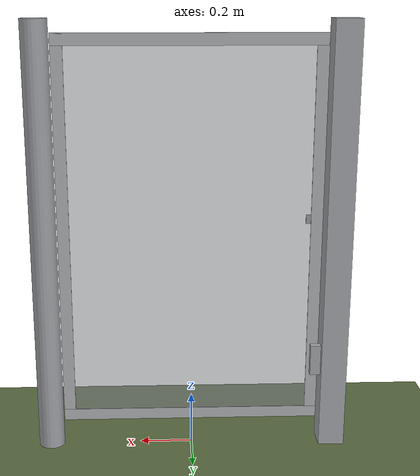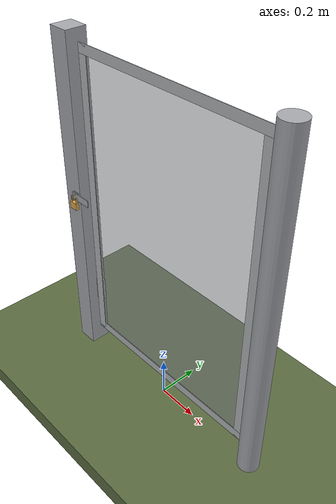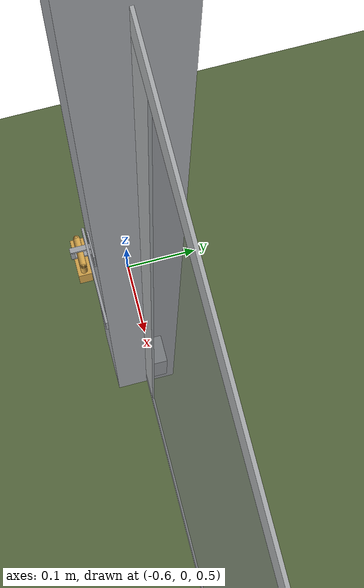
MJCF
<?xml version="1.0" ?>
<mujoco model="db0368_gate_swing_minimal">
  <compiler angle="radian" meshdir="../../hardware" texturedir="../../textures" autolimits="true" inertiafromgeom="false"/>
  <option timestep="0.002" integrator="implicitfast" cone="elliptic" impratio="10" noslip_iterations="3">
    <flag multiccd="enable"/>
  </option>
  <size memory="16M"/>
  <default>
    <geom condim="4" solref="0.005 1" solimp="0.95 0.99 0.001"/>
    <joint solreflimit="0.005 1" solimplimit="0.95 0.99 0.001"/>
    <tendon solreflimit="0.005 1"/>
    <equality solref="0.002 1"/>
  </default>
  <visual>
    <headlight ambient="0.4 0.4 0.4" diffuse="0.7 0.7 0.7" specular="0.2 0.2 0.2"/>
    <quality shadowsize="4096"/>
    <map znear="0.01" zfar="60"/>
  </visual>
  <asset>
    <material name="mat_floor" rgba="0.35 0.42 0.25 1" specular="0.2" shininess="0.15" reflectance="0"/>
    <material name="mat_wall" rgba="0.78 0.76 0.7 1" specular="0.2" shininess="0.1" reflectance="0"/>
    <material name="mat_leaf" rgba="0.7 0.71 0.72 1" specular="0.74" shininess="0.5" reflectance="0.36"/>
    <material name="mat_mesh_infill" rgba="0.6 0.62 0.64 0.55" specular="0.68" shininess="0.3" reflectance="0.1"/>
    <material name="mat_hinge" rgba="0.65 0.66 0.68 1" specular="0.74" shininess="0.5" reflectance="0.36"/>
    <material name="mat_op_steel_galvanized" rgba="0.65 0.66 0.68 1" specular="0.74" shininess="0.5" reflectance="0.36"/>
    <material name="mat_padlock" rgba="0.85 0.66 0.3 1" specular="0.8" shininess="0.75" reflectance="0.4"/>
    <material name="mat_frame" rgba="0.65 0.66 0.68 1" specular="0.74" shininess="0.5" reflectance="0.36"/>
    <material name="mat_fence_mesh" rgba="0.6 0.62 0.64 0.5" specular="0.68" shininess="0.3" reflectance="0.1"/>
    <texture name="skybox" type="skybox" builtin="gradient" rgb1="0.6 0.7 0.85" rgb2="0.9 0.92 0.95" width="256" height="256"/>
  </asset>
  <worldbody>
    <light name="sun" pos="1.5 -2.5 4" dir="-0.3 0.5 -0.8" directional="true" diffuse="0.8 0.8 0.8" specular="0.3 0.3 0.3" castshadow="true"/>
    <light name="fill" pos="-1.5 2.5 3" dir="0.3 -0.5 -0.7" directional="true" diffuse="0.35 0.35 0.4" castshadow="false"/>
    <camera name="robot_view" pos="0 -2.05 1.334" xyaxes="1 0 0 0 0.26963 0.962964" fovy="52"/>
    <camera name="far_view" pos="0 2.05 1.334" xyaxes="-1 0 0 0 -0.26963 0.962964" fovy="52"/>
    <camera name="iso" pos="-1.558 -1.722 1.662" xyaxes="0.741536 -0.670913 0 0.242917 0.268487 0.932151" fovy="46"/>
    <camera name="detail_handle" pos="-0.356 -0.864 1.18" xyaxes="0.97561 0.219512 0 -0.070934 0.315262 0.94635" fovy="38"/>
    <geom name="floor" type="box" size="6 6 0.05" pos="0 0 -0.05" material="mat_floor" group="0" contype="1" conaffinity="1" friction="0.8 0.005 0.0001" density="2400"/>
    <geom name="leaf_staple_leg_n" type="box" size="0.003 0.0025 0.013" pos="-0.534 -0.063 0.9125" quat="0 0 -0.707107 0.707107" material="mat_op_steel_galvanized" group="0" contype="1" conaffinity="1" friction="0.6 0.005 0.0001" density="7800"/>
    <geom name="leaf_staple_leg_p" type="box" size="0.003 0.0025 0.013" pos="-0.534 -0.063 0.8875" quat="0 0 -0.707107 0.707107" material="mat_op_steel_galvanized" group="0" contype="1" conaffinity="1" friction="0.6 0.005 0.0001" density="7800"/>
    <geom name="leaf_staple_bridge" type="box" size="0.003 0.015 0.0025" pos="-0.534 -0.0735 0.9" quat="0 0 -0.707107 0.707107" material="mat_op_steel_galvanized" group="0" contype="1" conaffinity="1" friction="0.6 0.005 0.0001" density="7800"/>
    <geom name="leaf_staple_base" type="box" size="0.016 0.021 0.001" pos="-0.534 -0.051 0.9" quat="0 0 -0.707107 0.707107" material="mat_op_steel_galvanized" group="1" contype="0" conaffinity="0" density="7800"/>
    <geom name="leaf_padlock_shackle" type="capsule" size="0.004 0.016" pos="-0.534 -0.065 0.9" quat="0.707107 0 -0.707107 0" material="mat_padlock" group="1" contype="0" conaffinity="0" density="7850"/>
    <geom name="leaf_padlock_leg_a" type="capsule" size="0.004 0.012" pos="-0.518 -0.065 0.888" quat="0 1 0 0" material="mat_padlock" group="1" contype="0" conaffinity="0" density="7850"/>
    <geom name="leaf_padlock_leg_b" type="capsule" size="0.004 0.012" pos="-0.55 -0.065 0.888" quat="0 1 0 0" material="mat_padlock" group="1" contype="0" conaffinity="0" density="7850"/>
    <geom name="leaf_padlock_body" type="box" size="0.022 0.018 0.008" pos="-0.534 -0.065 0.858" quat="0 0 -0.707107 0.707107" material="mat_padlock" group="0" contype="1" conaffinity="1" friction="0.6 0.005 0.0001" density="7850"/>
    <geom name="post_hinge" type="cylinder" size="0.05 0.825" pos="0.556 0 0.825" material="mat_frame" group="0" contype="1" conaffinity="1" friction="0.6 0.005 0.0001" density="800"/>
    <geom name="post_latch" type="box" size="0.05 0.05 0.825" pos="-0.556 0 0.825" material="mat_frame" group="0" contype="1" conaffinity="1" friction="0.6 0.005 0.0001" density="800"/>
    <geom name="gate_stop" type="box" size="0.02 0.012 0.06" pos="-0.486 0.0135 0.35" material="mat_frame" group="0" contype="1" conaffinity="1" friction="0.6 0.005 0.0001" density="800"/>
    <site name="approach_point" pos="0 -1.5 0" quat="1 0 0 0" size="0.05" rgba="0.2 0.9 0.2 0.5" group="4"/>
    <site name="goal_point" pos="0 1.5 0" quat="1 0 0 0" size="0.05" rgba="0.2 0.9 0.2 0.5" group="4"/>
    <site name="door_plane_center" pos="0 0 0.76" quat="1 0 0 0" size="0.02" rgba="0.2 0.9 0.2 0.5" group="4"/>
    <body name="leaf" pos="0.506 0 0">
      <inertial pos="-0.503 0 0.85" mass="5.26766" quat="-0.5 0.5 0.5 0.5" diaginertia="0.438980859 0.987702574 1.426675532"/>
      <joint name="leaf_hinge" type="hinge" axis="0 0 1" pos="-0.003 -0.05 0" limited="true" range="0 0.0015" damping="1.2709" frictionloss="0.145081" stiffness="5" springref="-0.8" armature="0.02"/>
      <geom name="leaf_slab_col" type="box" size="0.5 0.0015 0.75" pos="-0.503 0 0.85" material="mat_leaf" group="3" contype="1" conaffinity="1" rgba="0.8 0.3 0.3 0.25" friction="0.45 0.005 0.0001" density="1"/>
      <geom name="leaf_rail_b" type="box" size="0.5 0.0015 0.0225" pos="-0.503 0 0.1225" material="mat_leaf" group="1" contype="0" conaffinity="0" density="1"/>
      <geom name="leaf_rail_t" type="box" size="0.5 0.0015 0.0225" pos="-0.503 0 1.5775" material="mat_leaf" group="1" contype="0" conaffinity="0" density="1"/>
      <geom name="leaf_stile_h" type="box" size="0.0225 0.0015 0.75" pos="-0.0255 0 0.85" material="mat_leaf" group="1" contype="0" conaffinity="0" density="1"/>
      <geom name="leaf_stile_l" type="box" size="0.0225 0.0015 0.75" pos="-0.9805 0 0.85" material="mat_leaf" group="1" contype="0" conaffinity="0" density="1"/>
      <geom name="leaf_mesh" type="box" size="0.455 0.0015 0.705" pos="-0.503 0 0.85" material="mat_mesh_infill" group="1" contype="0" conaffinity="0" density="1"/>
      <site name="leaf_edge_mid" pos="-1.003 0 0.75" quat="1 0 0 0" size="0.02" rgba="0.2 0.9 0.2 0.5" group="4"/>
      <body name="leaf_hasp" pos="-0.948 -0.054 0.9">
        <inertial pos="-0.057 -0.0015 0" mass="0.093366" quat="0 0 0.707107 0.707107" diaginertia="0.000009601 0.000101185 0.000110646"/>
        <joint name="leaf_hasp_hinge" type="hinge" axis="0 0 1" limited="true" range="0 0.0015" damping="0.02" frictionloss="0.05" armature="0.005"/>
        <geom name="leaf_hasp_strap" type="box" size="0.057 0.0175 0.0015" pos="-0.057 -0.0015 0" quat="0 0 -0.707107 0.707107" material="mat_op_steel_galvanized" group="0" contype="1" conaffinity="1" friction="0.6 0.005 0.0001" density="7800"/>
        <site name="leaf_hasp_grip" pos="-0.094 -0.01 0" quat="1 0 0 0" size="0.01" rgba="0.2 0.9 0.2 0.5" group="4"/>
      </body>
    </body>
  </worldbody>
  <sensor>
    <jointpos name="leaf_hinge_pos" joint="leaf_hinge"/>
    <jointvel name="leaf_hinge_vel" joint="leaf_hinge"/>
    <jointpos name="leaf_hasp_hinge_pos" joint="leaf_hasp_hinge"/>
    <jointvel name="leaf_hasp_hinge_vel" joint="leaf_hasp_hinge"/>
  </sensor>
</mujoco>
